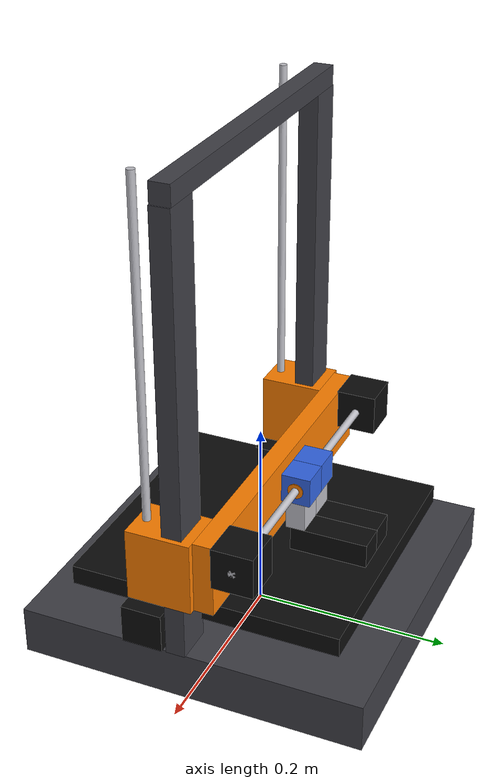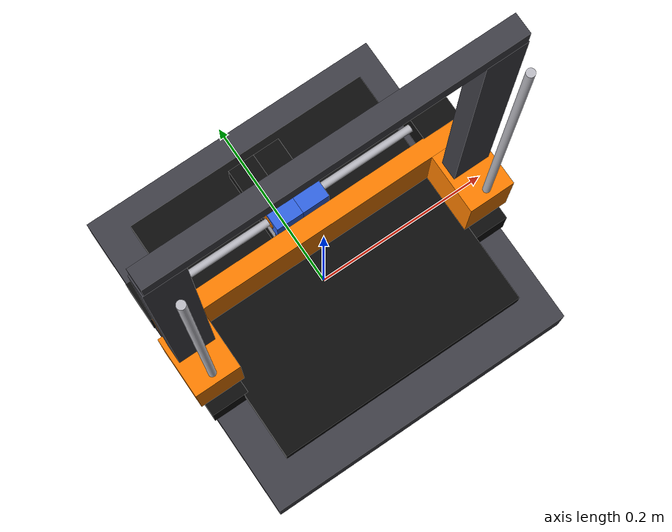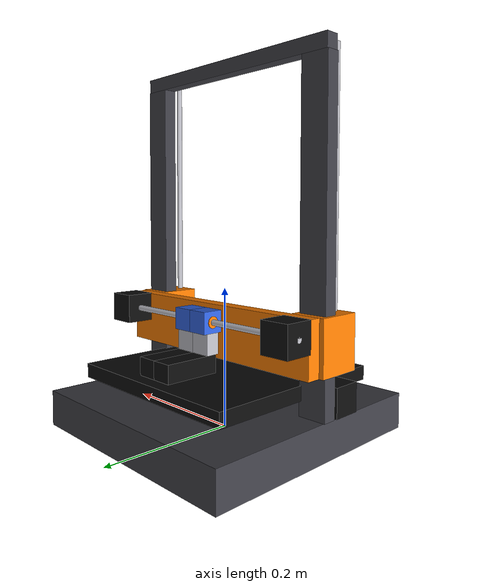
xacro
<?xml version="1.0"?>
<robot name="anycubic_vyper" xmlns:xacro="http://www.ros.org/wiki/xacro">
  <!-- Joint limits [m], sim joint values; no defaults: build_urdf.py must pass them -->
  <xacro:arg name="x_lower" default=""/>
  <xacro:arg name="x_upper" default=""/>
  <xacro:arg name="y_lower" default=""/>
  <xacro:arg name="y_upper" default=""/>
  <xacro:arg name="z_lower" default=""/>
  <xacro:arg name="z_upper" default=""/>

  <material name="grey"><color rgba="0.25 0.25 0.28 1"/></material>
  <material name="black"><color rgba="0.05 0.05 0.05 1"/></material>
  <material name="orange"><color rgba="1.0 0.5 0.0 1"/></material>
  <material name="blue"><color rgba="0.2 0.4 0.9 1"/></material>
  <material name="silver"><color rgba="0.75 0.75 0.78 1"/></material>

  <!-- Base frame (origin at base centre, on the floor) -->
  <link name="base_link">
    <visual>
      <origin xyz="0 0 0.025"/>
      <geometry><box size="0.35 0.355 0.05"/></geometry>
      <material name="grey"/>
    </visual>
    <collision>
      <origin xyz="0 0 0.025"/>
      <geometry><box size="0.35 0.355 0.05"/></geometry>
    </collision>
    <inertial><mass value="5"/><inertia ixx="0.1" iyy="0.1" izz="0.1" ixy="0" ixz="0" iyz="0"/></inertial>
  </link>

  <!-- Fixed frame: uprights + top bar + dual Z lead screws (do NOT move with Z) -->
  <link name="frame">
    <!-- left upright -->
    <visual>
      <origin xyz="-0.1565 0 0.225"/>
      <geometry><box size="0.04 0.02 0.45"/></geometry>
      <material name="grey"/>
    </visual>
    <collision>
      <origin xyz="-0.1565 0 0.225"/>
      <geometry><box size="0.04 0.02 0.45"/></geometry>
    </collision>
    <!-- right upright -->
    <visual>
      <origin xyz="0.1565 0 0.225"/>
      <geometry><box size="0.04 0.02 0.45"/></geometry>
      <material name="grey"/>
    </visual>
    <collision>
      <origin xyz="0.1565 0 0.225"/>
      <geometry><box size="0.04 0.02 0.45"/></geometry>
    </collision>
    <!-- top bar -->
    <visual>
      <origin xyz="0 0 0.46"/>
      <geometry><box size="0.35 0.02 0.02"/></geometry>
      <material name="grey"/>
    </visual>
    <collision>
      <origin xyz="0 0 0.46"/>
      <geometry><box size="0.35 0.02 0.02"/></geometry>
    </collision>
    <!-- left Z lead screw -->
    <visual>
      <origin xyz="-0.1565 -0.035 0.265"/>
      <geometry><cylinder radius="0.004" length="0.41"/></geometry>
      <material name="silver"/>
    </visual>
    <collision>
      <origin xyz="-0.1565 -0.035 0.265"/>
      <geometry><cylinder radius="0.004" length="0.41"/></geometry>
    </collision>
    <!-- right Z lead screw -->
    <visual>
      <origin xyz="0.1565 -0.035 0.265"/>
      <geometry><cylinder radius="0.004" length="0.41"/></geometry>
      <material name="silver"/>
    </visual>
    <collision>
      <origin xyz="0.1565 -0.035 0.265"/>
      <geometry><cylinder radius="0.004" length="0.41"/></geometry>
    </collision>
    <!-- left Z motor -->
    <visual>
      <origin xyz="-0.1565 -0.035 0.02"/>
      <geometry><box size="0.042 0.042 0.04"/></geometry>
      <material name="black"/>
    </visual>
    <collision>
      <origin xyz="-0.1565 -0.035 0.02"/>
      <geometry><box size="0.042 0.042 0.04"/></geometry>
    </collision>
    <!-- right Z motor -->
    <visual>
      <origin xyz="0.1565 -0.035 0.02"/>
      <geometry><box size="0.042 0.042 0.04"/></geometry>
      <material name="black"/>
    </visual>
    <collision>
      <origin xyz="0.1565 -0.035 0.02"/>
      <geometry><box size="0.042 0.042 0.04"/></geometry>
    </collision>
    <inertial><mass value="2"/><inertia ixx="0.05" iyy="0.05" izz="0.05" ixy="0" ixz="0" iyz="0"/></inertial>
  </link>
  <joint name="frame_mount" type="fixed">
    <parent link="base_link"/><child link="frame"/>
    <!-- frame sits on the base top -->
    <origin xyz="0 -0.01 0.05"/>
  </joint>

  <!-- Y axis: heated bed -->
  <link name="bed">
    <visual>
      <origin xyz="0 0 0.0"/>
      <geometry><box size="0.28 0.28 0.02"/></geometry>
      <material name="black"/>
    </visual>
    <collision>
      <origin xyz="0 0 0.0"/>
      <geometry><box size="0.25 0.27 0.006"/></geometry>
    </collision>
    <inertial><mass value="0.5"/><inertia ixx="0.01" iyy="0.01" izz="0.01" ixy="0" ixz="0" iyz="0"/></inertial>
  </link>
  <joint name="y_axis" type="prismatic">
    <parent link="base_link"/><child link="bed"/>
    <origin xyz="0 0 0.08"/>
    <axis xyz="0 1 0"/>
    <!-- printer Y_MIN_POS..Y_MAX_POS through sim_to_printer.Y_MAP -->
    <limit lower="$(arg y_lower)" upper="$(arg y_upper)" effort="100" velocity="1.0"/>
  </joint>

  <link name="x_gantry">
    <!-- X beam -->
    <visual>
      <origin xyz="0 0.03 -0.017"/>
      <geometry><box size="0.35 0.02 0.074"/></geometry>
      <material name="orange"/>
    </visual>
    <collision>
      <origin xyz="0 0.03 -0.017"/>
      <geometry><box size="0.35 0.02 0.074"/></geometry>
    </collision>
    <!-- left Z carriage: wraps the left pillar (x = -0.1565) and its Z lead screw behind it (y = -0.035), reaches forward to the beam -->
    <visual>
      <origin xyz="-0.1565 -0.0125 -0.017"/>
      <geometry><box size="0.05 0.065 0.074"/></geometry>
      <material name="orange"/>
    </visual>
    <collision>
      <origin xyz="-0.1565 -0.0125 -0.017"/>
      <geometry><box size="0.05 0.065 0.074"/></geometry>
    </collision>
    <!-- right Z carriage: wraps the right pillar (x = 0.1565) and its Z lead screw -->
    <visual>
      <origin xyz="0.1565 -0.0125 -0.017"/>
      <geometry><box size="0.05 0.065 0.074"/></geometry>
      <material name="orange"/>
    </visual>
    <collision>
      <origin xyz="0.1565 -0.0125 -0.017"/>
      <geometry><box size="0.05 0.065 0.074"/></geometry>
    </collision>
    <!-- X2 motor: left side, mirrored, shaft facing inward -->
    <visual>
      <origin xyz="-0.1565 0.06 0"/>
      <geometry><box size="0.042 0.042 0.042"/></geometry>
      <material name="black"/>
    </visual>
    <collision>
      <origin xyz="-0.1565 0.06 0"/>
      <geometry><box size="0.042 0.042 0.042"/></geometry>
    </collision>
    <!-- X1 motor: right side, shaft facing inward -->
    <visual>
      <origin xyz="0.1565 0.06 0"/>
      <geometry><box size="0.042 0.042 0.042"/></geometry>
      <material name="black"/>
    </visual>
    <collision>
      <origin xyz="0.1565 0.06 0"/>
      <geometry><box size="0.042 0.042 0.042"/></geometry>
    </collision>
    <!-- X spindle (T8-style lead screw, same as Z) running in front of both pillars, motor to motor -->
    <visual>
      <origin xyz="0 0.06 0" rpy="0 1.5708 0"/>
      <geometry><cylinder radius="0.004" length="0.355"/></geometry>
      <material name="silver"/>
    </visual>
    <collision>
      <origin xyz="0 0.06 0" rpy="0 1.5708 0"/>
      <geometry><cylinder radius="0.004" length="0.355"/></geometry>
    </collision>
    <inertial><mass value="1"/><inertia ixx="0.01" iyy="0.01" izz="0.01" ixy="0" ixz="0" iyz="0"/></inertial>
  </link>
  <joint name="z_axis" type="prismatic">
    <parent link="frame"/><child link="x_gantry"/>
    <!-- at z = 0 the finger undersides are ~2.5 mm above the bed surface -->
    <origin xyz="0 0 0.1115"/>
    <axis xyz="0 0 1"/>
    <!-- printer Z_MIN_POS..Z_MAX_POS through sim_to_printer.Z_MAP -->
    <limit lower="$(arg z_lower)" upper="$(arg z_upper)" effort="100" velocity="0.2"/>
  </joint>

  <link name="left_jaw">
    <!-- nut block riding the spindle -->
    <visual>
      <origin xyz="-0.015 0.06 0"/>
      <geometry><box size="0.03 0.03 0.03"/></geometry>
      <material name="blue"/>
    </visual>
    <collision>
      <origin xyz="-0.015 0.06 0"/>
      <geometry><box size="0.03 0.03 0.03"/></geometry>
    </collision>
    <!-- lead-screw nut -->
    <visual>
      <origin xyz="-0.015 0.06 0" rpy="0 1.5708 0"/>
      <geometry><cylinder radius="0.008" length="0.032"/></geometry>
      <material name="orange"/>
    </visual>
    <collision>
      <origin xyz="-0.015 0.06 0" rpy="0 1.5708 0"/>
      <geometry><cylinder radius="0.008" length="0.032"/></geometry>
    </collision>
    <!-- connector: hangs from the nut block bottom (z = -0.015) down to the finger top (z = -0.044) -->
    <visual>
      <origin xyz="-0.015 0.06 -0.0295"/>
      <geometry><box size="0.03 0.02 0.029"/></geometry>
      <material name="silver"/>
    </visual>
    <collision>
      <origin xyz="-0.015 0.06 -0.0295"/>
      <geometry><box size="0.03 0.02 0.029"/></geometry>
    </collision>
    <!-- finger, pointing +Y; 2.5 cm tall, z = -0.044 .. -0.069 below spindle axis, inner face at link x = 0 -->
    <visual>
      <origin xyz="-0.015 0.095 -0.0565"/>
      <geometry><box size="0.03 0.08 0.025"/></geometry>
      <material name="black"/>
    </visual>
    <collision>
      <origin xyz="-0.015 0.095 -0.0565"/>
      <geometry><box size="0.03 0.08 0.025"/></geometry>
    </collision>
    <inertial><mass value="0.1"/><inertia ixx="0.0002" iyy="0.0002" izz="0.0002" ixy="0" ixz="0" iyz="0"/></inertial>
  </link>
  <joint name="x2_axis" type="prismatic">
    <parent link="x_gantry"/><child link="left_jaw"/>
    <!-- driven by X2 (left motor) -->
    <origin xyz="0 0 0"/>
    <axis xyz="-1 0 0"/>
    <!-- printer X range X_MIN_POS..X_MIN_POS + X_GRIPPER_HOME_GAP through sim_to_printer.X_MAP -->
    <limit lower="$(arg x_lower)" upper="$(arg x_upper)" effort="100" velocity="1.0"/>
  </joint>

  <link name="right_jaw">
    <!-- nut block riding the spindle -->
    <visual>
      <origin xyz="0.015 0.06 0"/>
      <geometry><box size="0.03 0.03 0.03"/></geometry>
      <material name="blue"/>
    </visual>
    <collision>
      <origin xyz="0.015 0.06 0"/>
      <geometry><box size="0.03 0.03 0.03"/></geometry>
    </collision>
    <!-- lead-screw nut -->
    <visual>
      <origin xyz="0.015 0.06 0" rpy="0 1.5708 0"/>
      <geometry><cylinder radius="0.008" length="0.032"/></geometry>
      <material name="orange"/>
    </visual>
    <collision>
      <origin xyz="0.015 0.06 0" rpy="0 1.5708 0"/>
      <geometry><cylinder radius="0.008" length="0.032"/></geometry>
    </collision>
    <!-- connector: hangs from the nut block bottom (z = -0.015) down to the finger top (z = -0.044) -->
    <visual>
      <origin xyz="0.015 0.06 -0.0295"/>
      <geometry><box size="0.03 0.02 0.029"/></geometry>
      <material name="silver"/>
    </visual>
    <collision>
      <origin xyz="0.015 0.06 -0.0295"/>
      <geometry><box size="0.03 0.02 0.029"/></geometry>
    </collision>
    <!-- finger, pointing +Y; 2.5 cm tall, z = -0.044 .. -0.069 below spindle axis, inner face at link x = 0 -->
    <visual>
      <origin xyz="0.015 0.095 -0.0565"/>
      <geometry><box size="0.03 0.08 0.025"/></geometry>
      <material name="black"/>
    </visual>
    <collision>
      <origin xyz="0.015 0.095 -0.0565"/>
      <geometry><box size="0.03 0.08 0.025"/></geometry>
    </collision>
    <inertial><mass value="0.1"/><inertia ixx="0.0002" iyy="0.0002" izz="0.0002" ixy="0" ixz="0" iyz="0"/></inertial>
  </link>
  <joint name="x1_axis" type="prismatic">
    <parent link="x_gantry"/><child link="right_jaw"/>
    <!-- driven by X1 (right motor) -->
    <origin xyz="0 0 0"/>
    <axis xyz="-1 0 0"/>
    <!-- printer X range X_MIN_POS..X_MIN_POS + X_GRIPPER_HOME_GAP through sim_to_printer.X_MAP -->
    <limit lower="$(arg x_lower)" upper="$(arg x_upper)" effort="100" velocity="1.0"/>
  </joint>
</robot>
